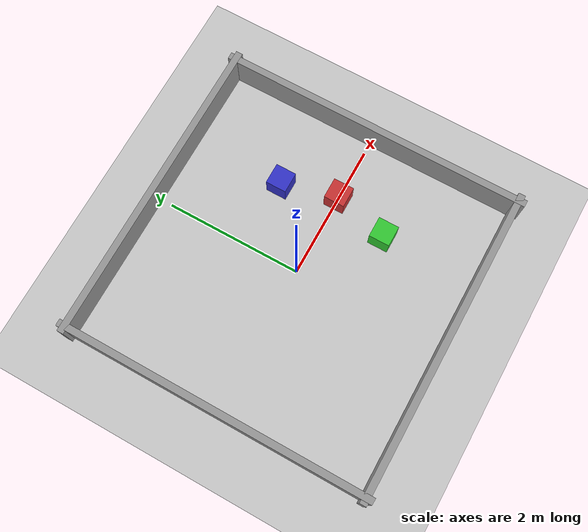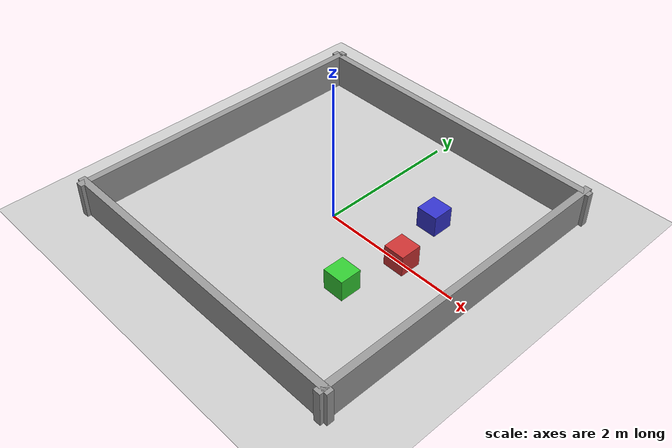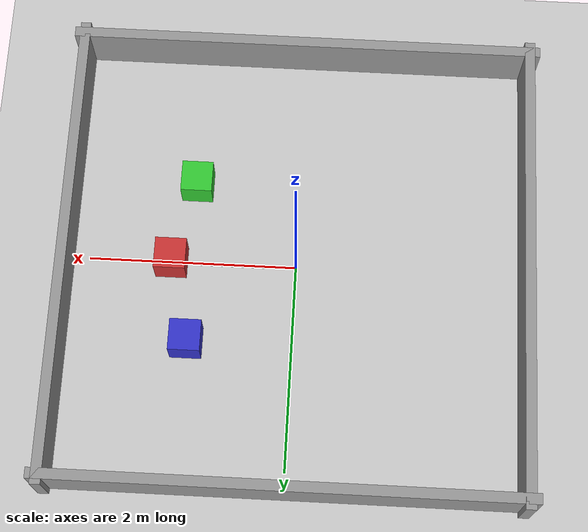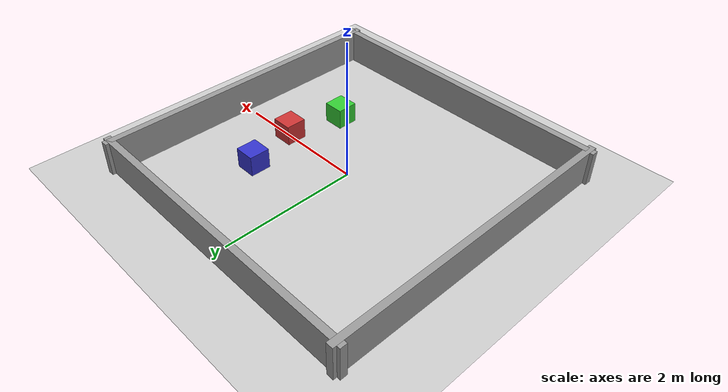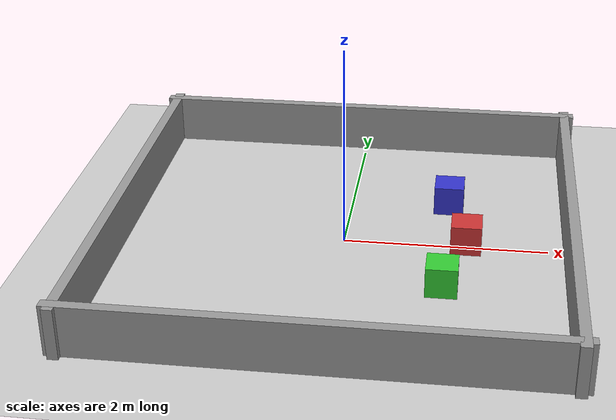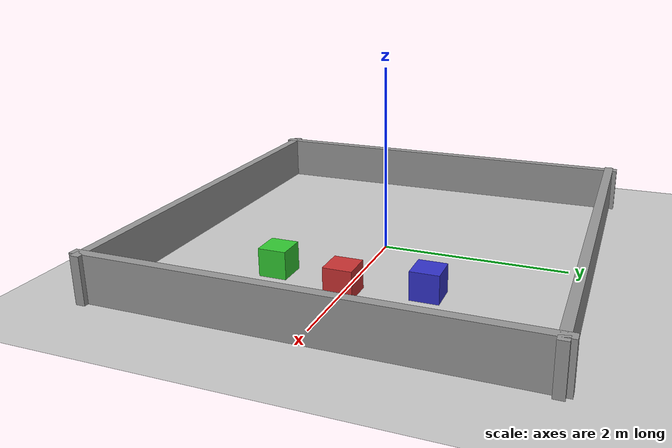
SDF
<?xml version="1.0" ?>
<sdf version="1.5">
  <world name="default">
    <include>
      <uri>model://sun</uri>
    </include>
    <include>
      <uri>model://ground_plane</uri>
    </include>

    <!-- Permite resetear la pose del robot entre repeticiones durante las
         pruebas de validacion en modo sim, evitando que se acumule
         desplazamiento hasta chocar con las paredes. -->
    <plugin name="gazebo_ros_state" filename="libgazebo_ros_state.so">
      <ros>
        <namespace>/</namespace>
      </ros>
      <update_rate>1.0</update_rate>
    </plugin>

    <model name="wall_north">
      <static>true</static>
      <pose>0 2.2 0.25 0 0 0</pose>
      <link name="link">
        <collision name="collision">
          <geometry><box><size>4.6 0.1 0.5</size></box></geometry>
        </collision>
        <visual name="visual">
          <geometry><box><size>4.6 0.1 0.5</size></box></geometry>
          <material><ambient>0.6 0.6 0.6 1</ambient><diffuse>0.6 0.6 0.6 1</diffuse></material>
        </visual>
      </link>
    </model>
    <model name="wall_south">
      <static>true</static>
      <pose>0 -2.2 0.25 0 0 0</pose>
      <link name="link">
        <collision name="collision">
          <geometry><box><size>4.6 0.1 0.5</size></box></geometry>
        </collision>
        <visual name="visual">
          <geometry><box><size>4.6 0.1 0.5</size></box></geometry>
          <material><ambient>0.6 0.6 0.6 1</ambient><diffuse>0.6 0.6 0.6 1</diffuse></material>
        </visual>
      </link>
    </model>
    <model name="wall_east">
      <static>true</static>
      <pose>2.2 0 0.25 0 0 1.5708</pose>
      <link name="link">
        <collision name="collision">
          <geometry><box><size>4.6 0.1 0.5</size></box></geometry>
        </collision>
        <visual name="visual">
          <geometry><box><size>4.6 0.1 0.5</size></box></geometry>
          <material><ambient>0.6 0.6 0.6 1</ambient><diffuse>0.6 0.6 0.6 1</diffuse></material>
        </visual>
      </link>
    </model>
    <model name="wall_west">
      <static>true</static>
      <pose>-2.2 0 0.25 0 0 1.5708</pose>
      <link name="link">
        <collision name="collision">
          <geometry><box><size>4.6 0.1 0.5</size></box></geometry>
        </collision>
        <visual name="visual">
          <geometry><box><size>4.6 0.1 0.5</size></box></geometry>
          <material><ambient>0.6 0.6 0.6 1</ambient><diffuse>0.6 0.6 0.6 1</diffuse></material>
        </visual>
      </link>
    </model>

    <model name="obstacle_front">
      <static>true</static>
      <pose>1.2 0 0.15 0 0 0</pose>
      <link name="link">
        <collision name="collision">
          <geometry><box><size>0.3 0.3 0.3</size></box></geometry>
        </collision>
        <visual name="visual">
          <geometry><box><size>0.3 0.3 0.3</size></box></geometry>
          <material>
            <ambient>0.8 0.2 0.2 1</ambient>
            <diffuse>0.8 0.2 0.2 1</diffuse>
          </material>
        </visual>
      </link>
    </model>

    <model name="obstacle_right">
      <static>true</static>
      <pose>1.0 -0.8 0.15 0 0 0</pose>
      <link name="link">
        <collision name="collision">
          <geometry><box><size>0.3 0.3 0.3</size></box></geometry>
        </collision>
        <visual name="visual">
          <geometry><box><size>0.3 0.3 0.3</size></box></geometry>
          <material>
            <ambient>0.2 0.8 0.2 1</ambient>
            <diffuse>0.2 0.8 0.2 1</diffuse>
          </material>
        </visual>
      </link>
    </model>

    <model name="line_strip">
      <static>true</static>
      <pose>0.6 0 0.0001 0 0 0</pose>
      <link name="link">
        <collision name="collision">
          <geometry><box><size>0.7 0.03 0.0002</size></box></geometry>
          <laser_retro>100</laser_retro>
          <surface>
            <contact>
              <ode><min_depth>0.0</min_depth></ode>
            </contact>
            <friction>
              <ode><mu>0</mu><mu2>0</mu2></ode>
            </friction>
          </surface>
        </collision>
        <visual name="visual">
          <geometry><box><size>0.7 0.03 0.0002</size></box></geometry>
          <material>
            <ambient>0.05 0.05 0.05 1</ambient>
            <diffuse>0.05 0.05 0.05 1</diffuse>
          </material>
        </visual>
      </link>
    </model>

    <model name="obstacle_left">
      <static>true</static>
      <pose>1.0 0.8 0.15 0 0 0</pose>
      <link name="link">
        <collision name="collision">
          <geometry><box><size>0.3 0.3 0.3</size></box></geometry>
        </collision>
        <visual name="visual">
          <geometry><box><size>0.3 0.3 0.3</size></box></geometry>
          <material>
            <ambient>0.2 0.2 0.8 1</ambient>
            <diffuse>0.2 0.2 0.8 1</diffuse>
          </material>
        </visual>
      </link>
    </model>
  </world>
</sdf>
